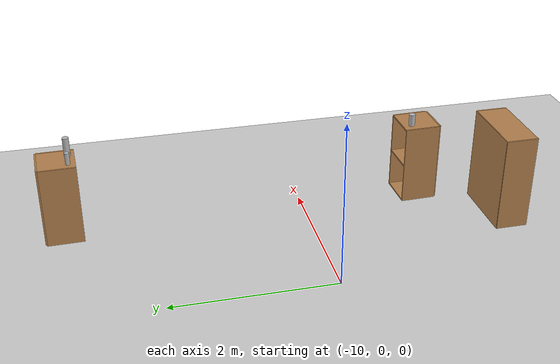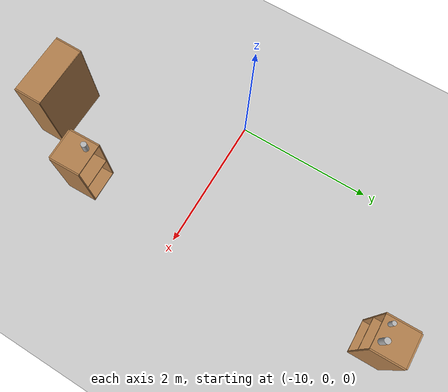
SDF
<sdf version="1.6">
 <world name="default">
  <model name="ground_plane">
   <static>1</static>
   <link name="link">
    <collision name="collision">
     <geometry><plane><normal>0 0 1</normal><size>100 100</size></plane></geometry>
     <surface><friction><ode><mu>100</mu><mu2>50</mu2></ode></friction></surface>
    </collision>
    <visual name="visual">
     <cast_shadows>0</cast_shadows>
     <geometry><plane><normal>0 0 1</normal><size>100 100</size></plane></geometry>
     <material>
      <script><uri>file://media/materials/scripts/gazebo.material</uri><name>Gazebo/Grey</name></script>
     </material>
    </visual>
    <velocity_decay><linear>0</linear><angular>0</angular></velocity_decay>
   </link>
  </model>
  <model name="bookshelf">
   <static>0</static>
   <link name="link">
    <inertial>
     <mass>1</mass>
     <inertia><ixx>1</ixx><ixy>0</ixy><ixz>0</ixz><iyy>1</iyy><iyz>0</iyz><izz>1</izz></inertia>
    </inertial>
    <collision name="back">
     <pose>0 0.005 0.6 0 -0 0</pose>
     <geometry><box><size>0.9 0.01 1.2</size></box></geometry>
    </collision>
    <visual name="visual1">
     <pose>0 0.005 0.6 0 -0 0</pose>
     <geometry><box><size>0.9 0.01 1.2</size></box></geometry>
     <material>
      <script><uri>file://media/materials/scripts/gazebo.material</uri><name>Gazebo/Wood</name></script>
     </material>
    </visual>
    <collision name="left_side">
     <pose>0.45 -0.195 0.6 0 -0 0</pose>
     <geometry><box><size>0.02 0.4 1.2</size></box></geometry>
    </collision>
    <visual name="visual2">
     <pose>0.45 -0.195 0.6 0 -0 0</pose>
     <geometry><box><size>0.02 0.4 1.2</size></box></geometry>
     <material>
      <script><uri>file://media/materials/scripts/gazebo.material</uri><name>Gazebo/Wood</name></script>
     </material>
    </visual>
    <collision name="right_side">
     <pose>-0.45 -0.195 0.6 0 -0 0</pose>
     <geometry><box><size>0.02 0.4 1.2</size></box></geometry>
    </collision>
    <visual name="visual3">
     <pose>-0.45 -0.195 0.6 0 -0 0</pose>
     <geometry><box><size>0.02 0.4 1.2</size></box></geometry>
     <material>
      <script><uri>file://media/materials/scripts/gazebo.material</uri><name>Gazebo/Wood</name></script>
     </material>
    </visual>
    <collision name="bottom">
     <pose>0 -0.195 0.03 0 -0 0</pose>
     <geometry><box><size>0.88 0.4 0.06</size></box></geometry>
    </collision>
    <visual name="visual4">
     <pose>0 -0.195 0.03 0 -0 0</pose>
     <geometry><box><size>0.88 0.4 0.06</size></box></geometry>
     <material>
      <script><uri>file://media/materials/scripts/gazebo.material</uri><name>Gazebo/Wood</name></script>
     </material>
    </visual>
    <collision name="top">
     <pose>0 -0.195 1.19 0 -0 0</pose>
     <geometry><box><size>0.88 0.4 0.02</size></box></geometry>
    </collision>
    <visual name="visual5">
     <pose>0 -0.195 1.19 0 -0 0</pose>
     <geometry><box><size>0.88 0.4 0.02</size></box></geometry>
     <material>
      <script><uri>file://media/materials/scripts/gazebo.material</uri><name>Gazebo/Wood</name></script>
     </material>
    </visual>
    <collision name="low_shelf">
     <pose>0 -0.195 0.43 0 -0 0</pose>
     <geometry><box><size>0.88 0.4 0.02</size></box></geometry>
    </collision>
    <visual name="visual6">
     <pose>0 -0.195 0.43 0 -0 0</pose>
     <geometry><box><size>0.88 0.4 0.02</size></box></geometry>
     <material>
      <script><uri>file://media/materials/scripts/gazebo.material</uri><name>Gazebo/Wood</name></script>
     </material>
    </visual>
    <collision name="high_shelf">
     <pose>0 -0.195 0.8 0 -0 0</pose>
     <geometry><box><size>0.88 0.4 0.02</size></box></geometry>
    </collision>
    <visual name="visual7">
     <pose>0 -0.195 0.8 0 -0 0</pose>
     <geometry><box><size>0.88 0.4 0.02</size></box></geometry>
     <material>
      <script><uri>file://media/materials/scripts/gazebo.material</uri><name>Gazebo/Wood</name></script>
     </material>
    </visual>
    <velocity_decay><linear>0</linear><angular>0</angular></velocity_decay>
   </link>
   <pose>-8.86577 -2.21666 1e-06 -2e-05 -1e-06 0</pose>
  </model>
  <model name="cabinet_2">
   <static>0</static>
   <link name="cabinet_bottom_plate">
    <inertial>
     <pose>0 0 -1 0 -0 0</pose>
     <inertia><ixx>2.05</ixx><ixy>0</ixy><ixz>0</ixz><iyy>2.05</iyy><iyz>0</iyz><izz>2.05</izz></inertia>
     <mass>25</mass>
    </inertial>
    <collision name="cabinet_bottom_plate_geom">
     <pose>0 0 0.01 0 -0 0</pose>
     <geometry><box><size>0.45 0.45 0.02</size></box></geometry>
    </collision>
    <visual name="cabinet_bottom_plate_geom_visual">
     <pose>0 0 0.01 0 -0 0</pose>
     <geometry><box><size>0.45 0.45 0.02</size></box></geometry>
     <material>
      <script><uri>file://media/materials/scripts/gazebo.material</uri><name>Gazebo/Wood</name></script>
     </material>
    </visual>
    <collision name="cabinet_bottom_plate_geom_cabinet_back_plate">
     <pose>0.235 0 0.51 0 -0 0</pose>
     <geometry><box><size>0.02 0.45 1.02</size></box></geometry>
    </collision>
    <visual name="cabinet_bottom_plate_geom_cabinet_back_plate_visual">
     <pose>0.235 0 0.51 0 -0 0</pose>
     <geometry><box><size>0.02 0.45 1.02</size></box></geometry>
     <material>
      <script><uri>file://media/materials/scripts/gazebo.material</uri><name>Gazebo/Wood</name></script>
     </material>
    </visual>
    <collision name="cabinet_bottom_plate_geom_cabinet_left_plate">
     <pose>0 0.235 0.51 0 -0 0</pose>
     <geometry><box><size>0.45 0.02 1.02</size></box></geometry>
    </collision>
    <visual name="cabinet_bottom_plate_geom_cabinet_left_plate_visual">
     <pose>0 0.235 0.51 0 -0 0</pose>
     <geometry><box><size>0.45 0.02 1.02</size></box></geometry>
     <material>
      <script><uri>file://media/materials/scripts/gazebo.material</uri><name>Gazebo/Wood</name></script>
     </material>
    </visual>
    <collision name="cabinet_bottom_plate_geom_cabinet_middle_plate">
     <pose>0 0 0.51 0 -0 0</pose>
     <geometry><box><size>0.45 0.45 0.02</size></box></geometry>
    </collision>
    <visual name="cabinet_bottom_plate_geom_cabinet_middle_plate_visual">
     <pose>0 0 0.51 0 -0 0</pose>
     <geometry><box><size>0.45 0.45 0.02</size></box></geometry>
     <material>
      <script><uri>file://media/materials/scripts/gazebo.material</uri><name>Gazebo/Wood</name></script>
     </material>
    </visual>
    <collision name="cabinet_bottom_plate_geom_cabinet_right_plate">
     <pose>0 -0.235 0.51 0 -0 0</pose>
     <geometry><box><size>0.45 0.02 1.02</size></box></geometry>
    </collision>
    <visual name="cabinet_bottom_plate_geom_cabinet_right_plate_visual">
     <pose>0 -0.235 0.51 0 -0 0</pose>
     <geometry><box><size>0.45 0.02 1.02</size></box></geometry>
     <material>
      <script><uri>file://media/materials/scripts/gazebo.material</uri><name>Gazebo/Wood</name></script>
     </material>
    </visual>
    <collision name="cabinet_bottom_plate_geom_cabinet_top_plate">
     <pose>0 0 1.01 0 -0 0</pose>
     <geometry><box><size>0.45 0.45 0.02</size></box></geometry>
    </collision>
    <visual name="cabinet_bottom_plate_geom_cabinet_top_plate_visual">
     <pose>0 0 1.01 0 -0 0</pose>
     <geometry><box><size>0.45 0.45 0.02</size></box></geometry>
     <material>
      <script><uri>file://media/materials/scripts/gazebo.material</uri><name>Gazebo/Wood</name></script>
     </material>
    </visual>
    <velocity_decay><linear>0</linear><angular>0</angular></velocity_decay>
   </link>
   <pose>-8.16988 3.01082 -0.004856 -4e-05 -0.000312 1.59163</pose>
  </model>
  <model name="cabinet_3">
   <static>0</static>
   <link name="cabinet_bottom_plate">
    <inertial>
     <pose>0 0 -1 0 -0 0</pose>
     <inertia><ixx>2.05</ixx><ixy>0</ixy><ixz>0</ixz><iyy>2.05</iyy><iyz>0</iyz><izz>2.05</izz></inertia>
     <mass>25</mass>
    </inertial>
    <collision name="cabinet_bottom_plate_geom">
     <pose>0 0 0.01 0 -0 0</pose>
     <geometry><box><size>0.45 0.45 0.02</size></box></geometry>
    </collision>
    <visual name="cabinet_bottom_plate_geom_visual">
     <pose>0 0 0.01 0 -0 0</pose>
     <geometry><box><size>0.45 0.45 0.02</size></box></geometry>
     <material>
      <script><uri>file://media/materials/scripts/gazebo.material</uri><name>Gazebo/Wood</name></script>
     </material>
    </visual>
    <collision name="cabinet_bottom_plate_geom_cabinet_back_plate">
     <pose>0.235 0 0.51 0 -0 0</pose>
     <geometry><box><size>0.02 0.45 1.02</size></box></geometry>
    </collision>
    <visual name="cabinet_bottom_plate_geom_cabinet_back_plate_visual">
     <pose>0.235 0 0.51 0 -0 0</pose>
     <geometry><box><size>0.02 0.45 1.02</size></box></geometry>
     <material>
      <script><uri>file://media/materials/scripts/gazebo.material</uri><name>Gazebo/Wood</name></script>
     </material>
    </visual>
    <collision name="cabinet_bottom_plate_geom_cabinet_left_plate">
     <pose>0 0.235 0.51 0 -0 0</pose>
     <geometry><box><size>0.45 0.02 1.02</size></box></geometry>
    </collision>
    <visual name="cabinet_bottom_plate_geom_cabinet_left_plate_visual">
     <pose>0 0.235 0.51 0 -0 0</pose>
     <geometry><box><size>0.45 0.02 1.02</size></box></geometry>
     <material>
      <script><uri>file://media/materials/scripts/gazebo.material</uri><name>Gazebo/Wood</name></script>
     </material>
    </visual>
    <collision name="cabinet_bottom_plate_geom_cabinet_middle_plate">
     <pose>0 0 0.51 0 -0 0</pose>
     <geometry><box><size>0.45 0.45 0.02</size></box></geometry>
    </collision>
    <visual name="cabinet_bottom_plate_geom_cabinet_middle_plate_visual">
     <pose>0 0 0.51 0 -0 0</pose>
     <geometry><box><size>0.45 0.45 0.02</size></box></geometry>
     <material>
      <script><uri>file://media/materials/scripts/gazebo.material</uri><name>Gazebo/Wood</name></script>
     </material>
    </visual>
    <collision name="cabinet_bottom_plate_geom_cabinet_right_plate">
     <pose>0 -0.235 0.51 0 -0 0</pose>
     <geometry><box><size>0.45 0.02 1.02</size></box></geometry>
    </collision>
    <visual name="cabinet_bottom_plate_geom_cabinet_right_plate_visual">
     <pose>0 -0.235 0.51 0 -0 0</pose>
     <geometry><box><size>0.45 0.02 1.02</size></box></geometry>
     <material>
      <script><uri>file://media/materials/scripts/gazebo.material</uri><name>Gazebo/Wood</name></script>
     </material>
    </visual>
    <collision name="cabinet_bottom_plate_geom_cabinet_top_plate">
     <pose>0 0 1.01 0 -0 0</pose>
     <geometry><box><size>0.45 0.45 0.02</size></box></geometry>
    </collision>
    <visual name="cabinet_bottom_plate_geom_cabinet_top_plate_visual">
     <pose>0 0 1.01 0 -0 0</pose>
     <geometry><box><size>0.45 0.45 0.02</size></box></geometry>
     <material>
      <script><uri>file://media/materials/scripts/gazebo.material</uri><name>Gazebo/Wood</name></script>
     </material>
    </visual>
    <velocity_decay><linear>0</linear><angular>0</angular></velocity_decay>
   </link>
   <pose>-8.14197 -1.51823 -0.004573 4.5e-05 -0.000156 -1.54349</pose>
  </model>
  <model name="sprite">
   <static>0</static>
   <link name="link">
    <inertial>
     <mass>0.25</mass>
     <inertia><ixx>0</ixx><ixy>0</ixy><ixz>0</ixz><iyy>0</iyy><iyz>0</iyz><izz>0</izz></inertia>
    </inertial>
    <collision name="collision">
     <pose>0 0 0.075 -3.14159 -0 0</pose>
     <geometry><cylinder><radius>0.04</radius><length>0.15</length></cylinder></geometry>
    </collision>
    <visual name="visual">
     <pose>0 0 0.075 -3.14159 -0 0</pose>
     <geometry><cylinder><radius>0.04</radius><length>0.15</length></cylinder></geometry>
     <material>
      <script>
       <uri>model://sprite/material/scripts</uri>
       <uri>model://sprite/material/textures</uri>
       <name>Custom/sprite</name>
      </script>
     </material>
    </visual>
    <velocity_decay><linear>0</linear><angular>0</angular></velocity_decay>
   </link>
   <pose>-8.25413 -1.41311 1.0154 -0.000174 -0.000178 -0.134092</pose>
  </model>
  <model name="biscuits_pack">
   <static>0</static>
   <link name="link">
    <inertial>
     <mass>0.25</mass>
     <inertia><ixx>0</ixx><ixy>0</ixy><ixz>0</ixz><iyy>0</iyy><iyz>0</iyz><izz>0</izz></inertia>
    </inertial>
    <collision name="collision">
     <geometry><cylinder><radius>0.029</radius><length>0.15</length></cylinder></geometry>
    </collision>
    <visual name="visual">
     <geometry><cylinder><radius>0.029</radius><length>0.15</length></cylinder></geometry>
     <material>
      <script>
       <uri>model://biscuits_pack/material/scripts</uri>
       <uri>model://biscuits_pack/material/textures</uri>
       <name>Custom/biscuits_pack</name>
      </script>
     </material>
    </visual>
    <velocity_decay><linear>0</linear><angular>0</angular></velocity_decay>
   </link>
   <pose>-8.30302 2.8717 1.0901 -0.000105 -0.000238 -0.300619</pose>
  </model>
  <model name="pringles2">
   <static>0</static>
   <link name="link">
    <inertial>
     <mass>0.25</mass>
     <inertia><ixx>0</ixx><ixy>0</ixy><ixz>0</ixz><iyy>0</iyy><iyz>0</iyz><izz>0</izz></inertia>
    </inertial>
    <collision name="collision">
     <pose>0 0 0.12 -3.14159 -0 0</pose>
     <geometry><cylinder><radius>0.04</radius><length>0.235</length></cylinder></geometry>
    </collision>
    <visual name="visual">
     <pose>0 0 0.12 -3.14159 -0 0</pose>
     <geometry><cylinder><radius>0.04</radius><length>0.235</length></cylinder></geometry>
     <material>
      <script>
       <uri>model://pringles2/material/scripts</uri>
       <uri>model://pringles2/material/textures</uri>
       <name>Custom/pringles2</name>
      </script>
     </material>
    </visual>
    <velocity_decay><linear>0</linear><angular>0</angular></velocity_decay>
   </link>
   <pose>-8.07236 2.86865 1.0126 9.7e-05 9.5e-05 -1.14421</pose>
  </model>
 </world>
</sdf>
